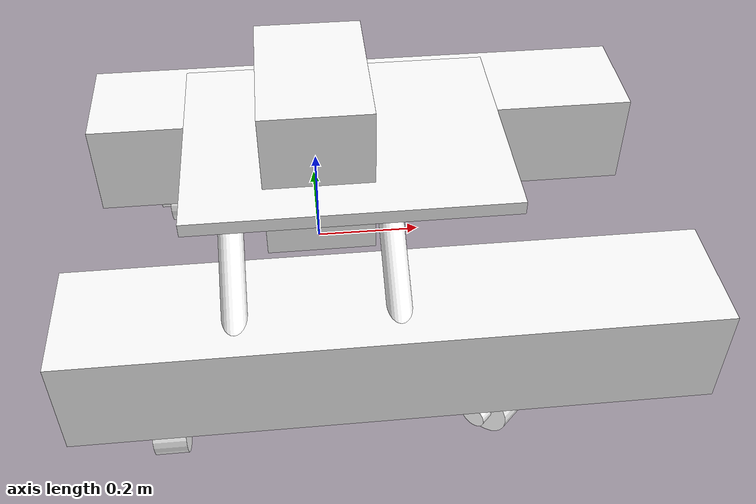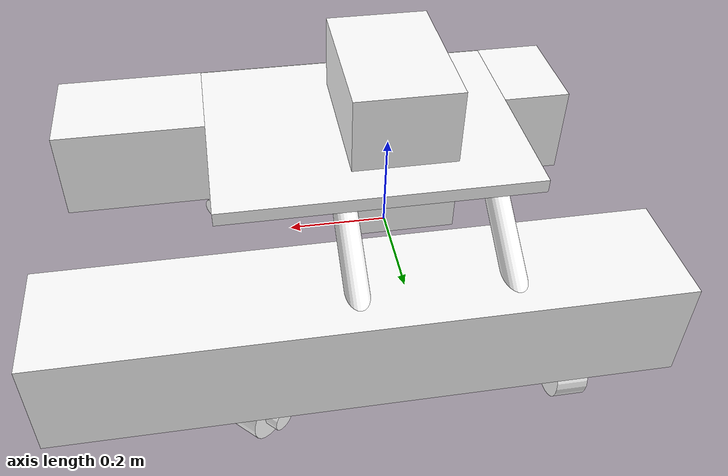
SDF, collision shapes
<?xml version="1.0"?>
<sdf version="1.6">
  <model name="nala2_boat">
    <link name="base_link">
      <inertial>
        <pose>0 0 -0.2 0 0 0</pose>
        <mass>10</mass>
        <inertia>
          <ixx>0.5666666666666668</ixx>
          <ixy>0</ixy>
          <ixz>0</ixz>
          <iyy>1.0416666666666667</iyy>
          <iyz>0</iyz>
          <izz>1.5416666666666667</izz>
        </inertia>
      </inertial>
      <visual name="visual">
        <geometry>
           <mesh>
            <uri>file://roboboat01/meshes/roboboat01.dae</uri>
          </mesh>
        </geometry>
        <material>
          <diffuse>1.0 1.0 1.0</diffuse>
          <specular>1.0 1.0 1.0</specular>
          <pbr>
            <metal>
              <albedo_map>file://roboboat01/materials/textures/Boat01_Albedo.png</albedo_map>
              <normal_map>file://roboboat01/materials/textures/Boat01_Normal.png</normal_map>
              <roughness_map>file://roboboat01/materials/textures/Boat01_Roughness.png</roughness_map>
              <metalness_map>file://roboboat01/materials/textures/Boat01_Metallic.png</metalness_map>
            </metal>
          </pbr>
          <!-- fallback to script if no PBR support-->
          <script>
            <uri>file://roboboat01/materials/scripts/</uri>
            <uri>file://roboboat01/materials/textures/</uri>
            <name>Fallback/Boat01_Diffuse</name>
          </script>
        </material>
      </visual>

      <collision name="Box011">
        <pose>0.110046 0.314338 0.0352701 0.0 0.0 0.0</pose>
        <geometry>
          <box>
            <size>1.14985 0.223203 0.202172</size>
          </box>
        </geometry>
      </collision>
      <collision name="Box012">
        <pose>0.110046 -0.31434 0.0352701 0.0 0.0 0.0</pose>
        <geometry>
          <box>
            <size>1.14985 0.223203 0.202172</size>
          </box>
        </geometry>
      </collision>
      <collision name="Box013">
        <pose>0.0549115 0.0 0.240029 0.0 0.0 0.0</pose>
        <geometry>
          <box>
            <size>0.598409 0.459244 0.0260934</size>
          </box>
        </geometry>
      </collision>
      <collision name="Cylinder262">
        <pose>-0.158378 0.290814 0.162712 1.0472 0.0 0.0</pose>
        <geometry>
          <cylinder>
            <length>0.222664</length>
            <radius>0.0222591</radius>
          </cylinder>
        </geometry>
      </collision>
      <collision name="Cylinder263">
        <pose>-0.158378 -0.290814 0.162712 -1.0472 0.0 0.0</pose>
        <geometry>
          <cylinder>
            <length>0.222664</length>
            <radius>0.0222591</radius>
          </cylinder>
        </geometry>
      </collision>
      <collision name="Cylinder264">
        <pose>0.12101 0.290814 0.162712 1.0472 0.0 0.0</pose>
        <geometry>
          <cylinder>
            <length>0.222664</length>
            <radius>0.0222591</radius>
          </cylinder>
        </geometry>
      </collision>
      <collision name="Cylinder265">
        <pose>0.12101 -0.290814 0.162712 -1.0472 0.0 0.0</pose>
        <geometry>
          <cylinder>
            <length>0.222664</length>
            <radius>0.0222591</radius>
          </cylinder>
        </geometry>
      </collision>
      <collision name="Cylinder266">
        <pose>0.12101 -0.000654578 0.21655 1.5708 0.0 0.0</pose>
        <geometry>
          <cylinder>
            <length>0.409041</length>
            <radius>0.0155011</radius>
          </cylinder>
        </geometry>
      </collision>
      <collision name="Cylinder267">
        <pose>-0.15838 -0.000654578 0.21655 1.5708 0.0 0.0</pose>
        <geometry>
          <cylinder>
            <length>0.409041</length>
            <radius>0.0155011</radius>
          </cylinder>
        </geometry>
      </collision>

      <!-- CPU case -->
      <visual name="visual_cpubox">
        <pose>0.0 0.0 0.25 0 0 0</pose>
        <geometry>
           <mesh>
            <uri>file://roboboat_cpubox/meshes/drybox.dae</uri>
          </mesh>
        </geometry>
        <material>
          <diffuse>1.0 1.0 1.0</diffuse>
          <specular>1.0 1.0 1.0</specular>
          <pbr>
            <metal>
              <albedo_map>file://roboboat_cpubox/materials/textures/DryBox_Albedo.png</albedo_map>
              <roughness_map>file://roboboat_cpubox/materials/textures/DryBox_Roughness.png</roughness_map>
            </metal>
          </pbr>
        </material>
      </visual>
      <collision name="cpu_box">
        <pose>0 0 0.25 0 0 0</pose>
        <geometry>
          <box>
            <size>0.2 0.3 0.3</size>
          </box>
        </geometry>
      </collision>
    </link>

    <!-- Stern-left thruster housing -->
    <link name="stern_left_housing_link">
      <pose>-0.3 0.33 -0.15 0 0 0</pose>
      <inertial>
        <pose>0 0 0 0 0 0</pose>
        <mass>1</mass>
        <inertia>
          <ixx>0.0020290833333333333</ixx>
          <ixy>0</ixy>
          <ixz>0</ixz>
          <iyy>0.002408333333333333</iyy>
          <iyz>0</iyz>
          <izz>0.0006874166666666666</izz>
        </inertia>
      </inertial>

      <visual name="stern_left_housing_visual">
        <pose>0 0 0 0 0 0</pose>
        <geometry>
           <mesh>
            <uri>file://roboboat01/meshes/housing.dae</uri>
          </mesh>
        </geometry>
        <material>
          <diffuse>1.0 1.0 1.0</diffuse>
          <specular>1.0 1.0 1.0</specular>
          <pbr>
            <metal>
              <albedo_map>file://roboboat01/materials/textures/Thruster_Albedo.png</albedo_map>
              <roughness_map>file://roboboat01/materials/textures/Thruster_Roughness.png</roughness_map>
            </metal>
          </pbr>
        </material>
      </visual>

      <visual name="stern_left_mount_visual">
        <pose>0 0 0 0 0 0</pose>
        <geometry>
           <mesh>
            <uri>file://roboboat01/meshes/mount.dae</uri>
          </mesh>
        </geometry>
        <material>
          <diffuse>1.0 1.0 1.0</diffuse>
          <specular>1.0 1.0 1.0</specular>
          <pbr>
            <metal>
              <albedo_map>file://roboboat01/materials/textures/Thruster_Albedo.png</albedo_map>
              <roughness_map>file://roboboat01/materials/textures/Thruster_Roughness.png</roughness_map>
            </metal>
          </pbr>
        </material>
      </visual>

      <collision name="Box011d">
        <pose>0 0 0.100951 0.0 0.0 0.0</pose>
        <geometry>
          <box>
            <size>0.0810453 0.0430519 0.070925</size>
          </box>
        </geometry>
      </collision>

      <collision name="Cylinder264d">
        <pose>0 0 0.062806 0.0 0.0 0.0</pose>
        <geometry>
          <cylinder>
            <length>0.125613</length>
            <radius>0.014703</radius>
          </cylinder>
        </geometry>
      </collision>

      <collision name="Cylinder263d">
        <pose>0.0166537 -0.00013299 0 1.5708 0.0 -1.5708</pose>
        <geometry>
          <cylinder>
            <length>0.14376</length>
            <radius>0.0243692</radius>
          </cylinder>
        </geometry>
      </collision>
    </link>

    <!-- Stern-left propeller -->
    <link name="stern_left_prop_link">
      <pose>-0.300872875 0.329867016 -0.15 0 0 0</pose>
      <inertial>
        <pose>0 0 0 1.5708 0.0 -1.5708</pose>
        <mass>0.1</mass>
        <inertia>
          <ixx>0.00010562499999999999</ixx>
          <ixy>0</ixy>
          <ixz>0</ixz>
          <iyy>0.00010562499999999999</iyy>
          <iyz>0</iyz>
          <izz>0.00015125000000000002</izz>
        </inertia>
      </inertial>
      <visual name="stern_left_prop_visual">
        <pose>0 0 0 0 0 0</pose>
        <geometry>
           <mesh>
            <uri>file://roboboat01/meshes/prop.dae</uri>
          </mesh>
        </geometry>
        <material>
          <diffuse>1.0 1.0 1.0</diffuse>
          <specular>1.0 1.0 1.0</specular>
          <pbr>
            <metal>
              <albedo_map>file://roboboat01/materials/textures/Thruster_Albedo.png</albedo_map>
              <roughness_map>file://roboboat01/materials/textures/Thruster_Roughness.png</roughness_map>
            </metal>
          </pbr>
        </material>
      </visual>

      <collision name="Cylinder262d">
        <pose>0 0 0 1.5708 0.0 -1.5708</pose>
        <geometry>
          <cylinder>
            <length>0.0608172</length>
            <radius>0.0553844</radius>
          </cylinder>
        </geometry>
      </collision>
    </link>

    <!-- Stern-right thruster housing -->
    <link name="stern_right_housing_link">
      <pose>-0.3 -0.33 -0.15 0 0 0</pose>
      <inertial>
        <pose>0 0 0 0 0 0</pose>
        <mass>1</mass>
        <inertia>
          <ixx>0.0020290833333333333</ixx>
          <ixy>0</ixy>
          <ixz>0</ixz>
          <iyy>0.002408333333333333</iyy>
          <iyz>0</iyz>
          <izz>0.0006874166666666666</izz>
        </inertia>
      </inertial>
      <visual name="stern_right_housing_visual">
        <pose>0 0 0 0 0 0</pose>
        <geometry>
           <mesh>
            <uri>file://roboboat01/meshes/housing.dae</uri>
          </mesh>
        </geometry>
        <material>
          <diffuse>1.0 1.0 1.0</diffuse>
          <specular>1.0 1.0 1.0</specular>
          <pbr>
            <metal>
              <albedo_map>file://roboboat01/materials/textures/Thruster_Albedo.png</albedo_map>
              <roughness_map>file://roboboat01/materials/textures/Thruster_Roughness.png</roughness_map>
            </metal>
          </pbr>
        </material>
      </visual>

      <visual name="stern_right_mount_visual">
        <pose>0 0 0 0 0 0</pose>
        <geometry>
           <mesh>
            <uri>file://roboboat01/meshes/mount.dae</uri>
          </mesh>
        </geometry>
        <material>
          <diffuse>1.0 1.0 1.0</diffuse>
          <specular>1.0 1.0 1.0</specular>
          <pbr>
            <metal>
              <albedo_map>file://roboboat01/materials/textures/Thruster_Albedo.png</albedo_map>
              <roughness_map>file://roboboat01/materials/textures/Thruster_Roughness.png</roughness_map>
            </metal>
          </pbr>
        </material>
      </visual>

      <!-- Thruster collisions -->
      <collision name="Box011i">
        <pose>0 0 0.100951 0.0 0.0 0.0</pose>
        <geometry>
          <box>
            <size>0.0810453 0.0430519 0.070925</size>
          </box>
        </geometry>
      </collision>

      <collision name="Cylinder264i">
        <pose>0 0 0.062806 0.0 0.0 0.0</pose>
        <geometry>
          <cylinder>
            <length>0.125613</length>
            <radius>0.014703</radius>
          </cylinder>
        </geometry>
      </collision>

      <collision name="Cylinder263i">
        <pose>0.0166537 0.00013299 0 1.5708 0.0 -1.5708</pose>
        <geometry>
          <cylinder>
            <length>0.14376</length>
            <radius>0.0243692</radius>
          </cylinder>
        </geometry>
      </collision>
    </link>

    <!-- Stern-right propeller -->
    <link name="stern_right_prop_link">
      <pose>-0.300872875 -0.329867016 -0.15 0 0 0</pose>
      <inertial>
        <pose>0 0 0 1.5708 0.0 -1.5708</pose>
        <mass>0.1</mass>
        <inertia>
          <ixx>0.00010562499999999999</ixx>
          <ixy>0</ixy>
          <ixz>0</ixz>
          <iyy>0.00010562499999999999</iyy>
          <iyz>0</iyz>
          <izz>0.00015125000000000002</izz>
        </inertia>
      </inertial>
      <visual name="stern_right_prop_visual">
        <pose>0 0 0 0 0 0</pose>
        <geometry>
           <mesh>
            <uri>file://roboboat01/meshes/prop.dae</uri>
          </mesh>
        </geometry>
        <material>
          <diffuse>1.0 1.0 1.0</diffuse>
          <specular>1.0 1.0 1.0</specular>
          <pbr>
            <metal>
              <albedo_map>file://roboboat01/materials/textures/Thruster_Albedo.png</albedo_map>
              <roughness_map>file://roboboat01/materials/textures/Thruster_Roughness.png</roughness_map>
            </metal>
          </pbr>
        </material>
      </visual>

      <collision name="Cylinder262i">
        <pose>0 0 0 1.5708 0.0 -1.5708</pose>
        <geometry>
          <cylinder>
            <length>0.0608172</length>
            <radius>0.0553844</radius>
          </cylinder>
        </geometry>
      </collision>
    </link>

    <!-- Bow-left thruster housing -->
    <link name="bow_left_housing_link">
      <pose>0.3 0.33 -0.15 0 0 -0.785398</pose>
      <inertial>
        <pose>0 0 0 0 0 0</pose>
        <mass>1</mass>
        <inertia>
          <ixx>0.0020290833333333333</ixx>
          <ixy>0</ixy>
          <ixz>0</ixz>
          <iyy>0.002408333333333333</iyy>
          <iyz>0</iyz>
          <izz>0.0006874166666666666</izz>
        </inertia>
      </inertial>

      <visual name="bow_left_housing_visual">
        <pose>0 0 0 0 0 0</pose>
        <geometry>
           <mesh>
            <uri>file://roboboat01/meshes/housing.dae</uri>
          </mesh>
        </geometry>
        <material>
          <diffuse>1.0 1.0 1.0</diffuse>
          <specular>1.0 1.0 1.0</specular>
          <pbr>
            <metal>
              <albedo_map>file://roboboat01/materials/textures/Thruster_Albedo.png</albedo_map>
              <roughness_map>file://roboboat01/materials/textures/Thruster_Roughness.png</roughness_map>
            </metal>
          </pbr>
        </material>
      </visual>

      <visual name="bow_left_mount_visual">
        <pose>0 0 0 0 0 0</pose>
        <geometry>
           <mesh>
            <uri>file://roboboat01/meshes/mount.dae</uri>
          </mesh>
        </geometry>
        <material>
          <diffuse>1.0 1.0 1.0</diffuse>
          <specular>1.0 1.0 1.0</specular>
          <pbr>
            <metal>
              <albedo_map>file://roboboat01/materials/textures/Thruster_Albedo.png</albedo_map>
              <roughness_map>file://roboboat01/materials/textures/Thruster_Roughness.png</roughness_map>
            </metal>
          </pbr>
        </material>
      </visual>

      <collision name="Box011fl">
        <pose>0 0 0.100951 0.0 0.0 0.0</pose>
        <geometry>
          <box>
            <size>0.0810453 0.0430519 0.070925</size>
          </box>
        </geometry>
      </collision>

      <collision name="Cylinder264fl">
        <pose>0 0 0.062806 0.0 0.0 0.0</pose>
        <geometry>
          <cylinder>
            <length>0.125613</length>
            <radius>0.014703</radius>
          </cylinder>
        </geometry>
      </collision>

      <collision name="Cylinder263fl">
        <pose>0.0166537 -0.00013299 0 1.5708 0.0 -1.5708</pose>
        <geometry>
          <cylinder>
            <length>0.14376</length>
            <radius>0.0243692</radius>
          </cylinder>
        </geometry>
      </collision>
    </link>

    <!-- Bow-left propeller -->
    <link name="bow_left_prop_link">
      <pose>0.300872875 0.329867016 -0.15 0 0 -0.785398</pose>
      <inertial>
        <pose>0 0 0 1.5708 0.0 -1.5708</pose>
        <mass>0.1</mass>
        <inertia>
          <ixx>0.00010562499999999999</ixx>
          <ixy>0</ixy>
          <ixz>0</ixz>
          <iyy>0.00010562499999999999</iyy>
          <iyz>0</iyz>
          <izz>0.00015125000000000002</izz>
        </inertia>
      </inertial>
      <visual name="bow_left_prop_visual">
        <pose>0 0 0 0 0 0</pose>
        <geometry>
           <mesh>
            <uri>file://roboboat01/meshes/prop.dae</uri>
          </mesh>
        </geometry>
        <material>
          <diffuse>1.0 1.0 1.0</diffuse>
          <specular>1.0 1.0 1.0</specular>
          <pbr>
            <metal>
              <albedo_map>file://roboboat01/materials/textures/Thruster_Albedo.png</albedo_map>
              <roughness_map>file://roboboat01/materials/textures/Thruster_Roughness.png</roughness_map>
            </metal>
          </pbr>
        </material>
      </visual>

      <collision name="Cylinder262fl">
        <pose>0 0 0 1.5708 0.0 -1.5708</pose>
        <geometry>
          <cylinder>
            <length>0.0608172</length>
            <radius>0.0553844</radius>
          </cylinder>
        </geometry>
      </collision>
    </link>

    <!-- Bow-right thruster housing -->
    <link name="bow_right_housing_link">
      <pose>0.3 -0.33 -0.15 0 0 0.785398</pose>
      <inertial>
        <pose>0 0 0 0 0 0</pose>
        <mass>1</mass>
        <inertia>
          <ixx>0.0020290833333333333</ixx>
          <ixy>0</ixy>
          <ixz>0</ixz>
          <iyy>0.002408333333333333</iyy>
          <iyz>0</iyz>
          <izz>0.0006874166666666666</izz>
        </inertia>
      </inertial>
      <visual name="bow_right_housing_visual">
        <pose>0 0 0 0 0 0</pose>
        <geometry>
           <mesh>
            <uri>file://roboboat01/meshes/housing.dae</uri>
          </mesh>
        </geometry>
        <material>
          <diffuse>1.0 1.0 1.0</diffuse>
          <specular>1.0 1.0 1.0</specular>
          <pbr>
            <metal>
              <albedo_map>file://roboboat01/materials/textures/Thruster_Albedo.png</albedo_map>
              <roughness_map>file://roboboat01/materials/textures/Thruster_Roughness.png</roughness_map>
            </metal>
          </pbr>
        </material>
      </visual>

      <visual name="bow_right_mount_visual">
        <pose>0 0 0 0 0 0</pose>
        <geometry>
           <mesh>
            <uri>file://roboboat01/meshes/mount.dae</uri>
          </mesh>
        </geometry>
        <material>
          <diffuse>1.0 1.0 1.0</diffuse>
          <specular>1.0 1.0 1.0</specular>
          <pbr>
            <metal>
              <albedo_map>file://roboboat01/materials/textures/Thruster_Albedo.png</albedo_map>
              <roughness_map>file://roboboat01/materials/textures/Thruster_Roughness.png</roughness_map>
            </metal>
          </pbr>
        </material>
      </visual>

      <!-- Thruster collisions -->
      <collision name="Box011fr">
        <pose>0 0 0.100951 0.0 0.0 0.0</pose>
        <geometry>
          <box>
            <size>0.0810453 0.0430519 0.070925</size>
          </box>
        </geometry>
      </collision>

      <collision name="Cylinder264fr">
        <pose>0 0 0.062806 0.0 0.0 0.0</pose>
        <geometry>
          <cylinder>
            <length>0.125613</length>
            <radius>0.014703</radius>
          </cylinder>
        </geometry>
      </collision>

      <collision name="Cylinder263fr">
        <pose>0.0166537 0.00013299 0 1.5708 0.0 -1.5708</pose>
        <geometry>
          <cylinder>
            <length>0.14376</length>
            <radius>0.0243692</radius>
          </cylinder>
        </geometry>
      </collision>
    </link>

    <!-- Bow-right propeller -->
    <link name="bow_right_prop_link">
      <pose>0.300872875 -0.329867016 -0.15 0 0 0.785398</pose>
      <inertial>
        <pose>0 0 0 1.5708 0.0 -1.5708</pose>
        <mass>0.1</mass>
        <inertia>
          <ixx>0.00010562499999999999</ixx>
          <ixy>0</ixy>
          <ixz>0</ixz>
          <iyy>0.00010562499999999999</iyy>
          <iyz>0</iyz>
          <izz>0.00015125000000000002</izz>
        </inertia>
      </inertial>
      <visual name="bow_right_prop_visual">
        <pose>0 0 0 0 0 0</pose>
        <geometry>
           <mesh>
            <uri>file://roboboat01/meshes/prop.dae</uri>
          </mesh>
        </geometry>
        <material>
          <diffuse>1.0 1.0 1.0</diffuse>
          <specular>1.0 1.0 1.0</specular>
          <pbr>
            <metal>
              <albedo_map>file://roboboat01/materials/textures/Thruster_Albedo.png</albedo_map>
              <roughness_map>file://roboboat01/materials/textures/Thruster_Roughness.png</roughness_map>
            </metal>
          </pbr>
        </material>
      </visual>

      <collision name="Cylinder262fr">
        <pose>0 0 0 1.5708 0.0 -1.5708</pose>
        <geometry>
          <cylinder>
            <length>0.0608172</length>
            <radius>0.0553844</radius>
          </cylinder>
        </geometry>
      </collision>
    </link>

    <!-- Chassis-left engine joint -->
    <joint name="stern_left_chasis_engine_joint" type="revolute">
      <pose>0 0 0 0 0 0</pose>
      <axis>
        <xyz>0 0 1</xyz>
        <limit>
          <lower>-3.14159</lower>
          <upper>3.14159</upper>
          <effort>100</effort>
          <velocity>10</velocity>
        </limit>
        <dynamics>
          <damping>1.0</damping>
          <friction>0.1</friction>
        </dynamics>
      </axis>
      <parent>base_link</parent>
      <child>stern_left_housing_link</child>
    </joint>

    <!-- Stern-left housing-propeller joint -->
    <joint name="stern_left_engine_propeller_joint" type="revolute">
      <pose>0 0 0 1.5708 0.0 0</pose>
      <axis>
        <xyz>1 0 0</xyz>
        <limit>
          <effort>100</effort>
          <velocity>100</velocity>
        </limit>
        <dynamics>
          <friction>0.05</friction>
          <damping>0.05</damping>
        </dynamics>
      </axis>
      <parent>stern_left_housing_link</parent>
      <child>stern_left_prop_link</child>
    </joint>

    <!-- Stern-right chassis-housing joint -->
    <joint name="stern_right_chasis_engine_joint" type="revolute">
      <pose>0 0 0 0 0 0</pose>
      <axis>
        <xyz>0 0 1</xyz>
        <limit>
          <lower>-3.14159</lower>
          <upper>3.14159</upper>
          <effort>100</effort>
          <velocity>10</velocity>
        </limit>
        <dynamics>
          <damping>1.0</damping>
          <friction>0.1</friction>
        </dynamics>
      </axis>
      <parent>base_link</parent>
      <child>stern_right_housing_link</child>
    </joint>

    <!-- Stern-right housing-propeller joint -->
    <joint name="stern_right_engine_propeller_joint" type="revolute">
      <pose>0 0 0 1.5708 0.0 0</pose>
      <axis>
        <xyz>1 0 0</xyz>
        <limit>
          <effort>100</effort>
          <velocity>100</velocity>
        </limit>
        <dynamics>
          <friction>0.05</friction>
          <damping>0.05</damping>
        </dynamics>
      </axis>
      <parent>stern_right_housing_link</parent>
      <child>stern_right_prop_link</child>
    </joint>

    <!-- Bow-left chassis-housing joint (fixed at 45 degrees) -->
    <joint name="bow_left_chasis_engine_joint" type="fixed">
      <parent>base_link</parent>
      <child>bow_left_housing_link</child>
    </joint>

    <!-- Bow-left housing-propeller joint -->
    <joint name="bow_left_engine_propeller_joint" type="revolute">
      <pose>0 0 0 1.5708 0.0 0</pose>
      <axis>
        <xyz>1 0 0</xyz>
        <limit>
          <effort>100</effort>
          <velocity>100</velocity>
        </limit>
        <dynamics>
          <friction>0.05</friction>
          <damping>0.05</damping>
        </dynamics>
      </axis>
      <parent>bow_left_housing_link</parent>
      <child>bow_left_prop_link</child>
    </joint>

    <!-- Bow-right chassis-housing joint (fixed at -45 degrees) -->
    <joint name="bow_right_chasis_engine_joint" type="fixed">
      <parent>base_link</parent>
      <child>bow_right_housing_link</child>
    </joint>

    <!-- Bow-right housing-propeller joint -->
    <joint name="bow_right_engine_propeller_joint" type="revolute">
      <pose>0 0 0 1.5708 0.0 0</pose>
      <axis>
        <xyz>1 0 0</xyz>
        <limit>
          <effort>100</effort>
          <velocity>100</velocity>
        </limit>
        <dynamics>
          <friction>0.05</friction>
          <damping>0.05</damping>
        </dynamics>
      </axis>
      <parent>bow_right_housing_link</parent>
      <child>bow_right_prop_link</child>
    </joint>

    <!-- Left hull -->
    <plugin
      filename="libSurface.so"
      name="vrx::Surface">
      <link_name>base_link</link_name>
      <hull_length>1.15</hull_length>
      <hull_radius>0.12</hull_radius>
      <fluid_level>0</fluid_level>
      <points>
        <point>0.68 0.314338 0.0352701</point>
        <point>-0.465 0.314338 0.0352701</point>
      </points>
      <wavefield>
        <topic>/vrx/wavefield/parameters</topic>
      </wavefield>
    </plugin>

    <!-- Right hull -->
    <plugin
      filename="libSurface.so"
      name="vrx::Surface">
      <link_name>base_link</link_name>
      <hull_length>1.15</hull_length>
      <hull_radius>0.12</hull_radius>
      <fluid_level>0</fluid_level>
      <points>
        <point>0.68 -0.314338 0.0352701</point>
        <point>-0.465 -0.314338 0.0352701</point>
      </points>
      <wavefield>
        <topic>/vrx/wavefield/parameters</topic>
      </wavefield>
    </plugin>

    <plugin
      filename="libSimpleHydrodynamics.so"
      name="vrx::SimpleHydrodynamics">
      <link_name>base_link</link_name>
      <!-- Added mass -->
      <xDotU>0.0</xDotU>
      <yDotV>0.0</yDotV>
      <nDotR>0.0</nDotR>
      <!-- Linear and quadratic drag -->
      <xU>2.0</xU>
      <xUU>3.0</xUU>
      <yV>0.5</yV>
      <yVV>0.5</yVV>
      <zW>20.0</zW>
      <kP>5.0</kP>
      <kPP>10.0</kPP>
      <mQ>10.0</mQ>
      <mQQ>10.0</mQQ>
      <nR>3.0</nR>
      <nRR>3.0</nRR>
    </plugin>

    <plugin
      filename="gz-sim-thruster-system"
      name="gz::sim::systems::Thruster">
      <namespace>model</namespace>
      <joint_name>stern_left_engine_propeller_joint</joint_name>
      <thrust_coefficient>0.004</thrust_coefficient>
      <fluid_density>1000</fluid_density>
      <propeller_diameter>0.1</propeller_diameter>
      <topic>nala2_boat/joint/stern_left_engine_propeller_joint/cmd_thrust</topic>
    </plugin>

    <plugin
      filename="gz-sim-thruster-system"
      name="gz::sim::systems::Thruster">
      <namespace>model</namespace>
      <joint_name>stern_right_engine_propeller_joint</joint_name>
      <thrust_coefficient>0.004</thrust_coefficient>
      <fluid_density>1000</fluid_density>
      <propeller_diameter>0.1</propeller_diameter>
      <topic>nala2_boat/joint/stern_right_engine_propeller_joint/cmd_thrust</topic>
    </plugin>

    <plugin
      filename="gz-sim-thruster-system"
      name="gz::sim::systems::Thruster">
      <namespace>model</namespace>
      <joint_name>bow_left_engine_propeller_joint</joint_name>
      <thrust_coefficient>0.004</thrust_coefficient>
      <fluid_density>1000</fluid_density>
      <propeller_diameter>0.1</propeller_diameter>
      <topic>nala2_boat/joint/bow_left_engine_propeller_joint/cmd_thrust</topic>
    </plugin>

    <plugin
      filename="gz-sim-thruster-system"
      name="gz::sim::systems::Thruster">
      <namespace>model</namespace>
      <joint_name>bow_right_engine_propeller_joint</joint_name>
      <thrust_coefficient>0.004</thrust_coefficient>
      <fluid_density>1000</fluid_density>
      <propeller_diameter>0.1</propeller_diameter>
      <topic>nala2_boat/joint/bow_right_engine_propeller_joint/cmd_thrust</topic>
    </plugin>

    <plugin
      filename="gz-sim-joint-position-controller-system"
      name="gz::sim::systems::JointPositionController">
      <joint_name>stern_left_chasis_engine_joint</joint_name>
      <topic>/model/nala2_boat/joint/stern_left_chasis_engine_joint/rotate_angle</topic>
      <p_gain>15</p_gain>
      <i_gain>0.5</i_gain>
      <d_gain>1</d_gain>
    </plugin>

    <plugin
      filename="gz-sim-joint-position-controller-system"
      name="gz::sim::systems::JointPositionController">
      <joint_name>stern_right_chasis_engine_joint</joint_name>
      <topic>/model/nala2_boat/joint/stern_right_chasis_engine_joint/rotate_angle</topic>
      <p_gain>15</p_gain>
      <i_gain>0.5</i_gain>
      <d_gain>1</d_gain>
    </plugin>

  </model>
</sdf>
